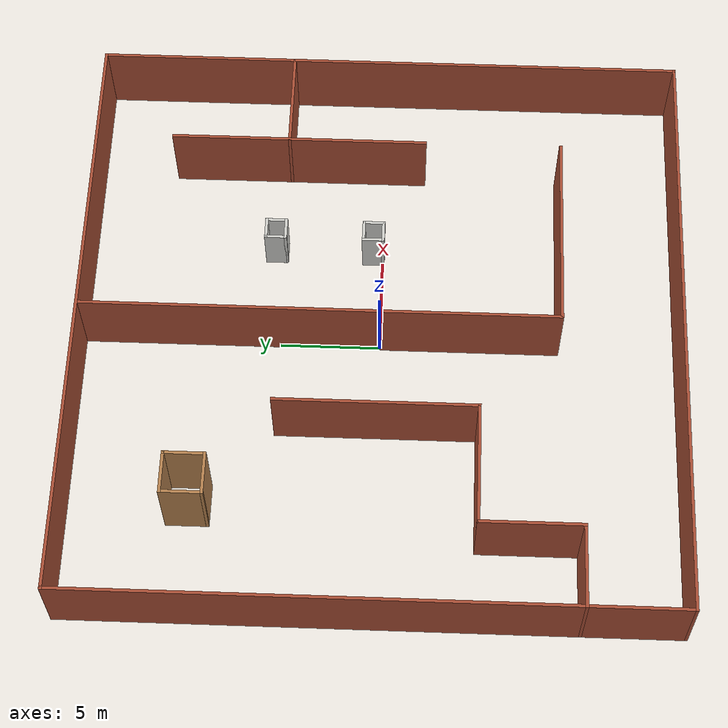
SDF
<?xml version='1.0'?>
<sdf version='1.7'>
  <model name='building'>
    <link name='Wall_23'>
      <pose>-15 0 0 0 -0 1.5708</pose>
      <self_collide>0</self_collide>
      <enable_wind>0</enable_wind>
      <kinematic>0</kinematic>
      <gravity>1</gravity>
      <inertial>
        <mass>1</mass>
        <pose>0 0 0 0 -0 0</pose>
        <inertia>
          <ixx>1</ixx>
          <ixy>0</ixy>
          <ixz>0</ixz>
          <iyy>1</iyy>
          <iyz>0</iyz>
          <izz>1</izz>
        </inertia>
      </inertial>
      <visual name='Wall_23_Visual'>
        <pose>0 0 2 0 -0 0</pose>
        <geometry>
          <box>
            <size>30.15 0.15 4</size>
          </box>
        </geometry>
        <material>
          <script>
            <uri>file://media/materials/scripts/gazebo.material</uri>
            <name>Gazebo/Bricks</name>
          </script>
          <ambient>1 1 1 1</ambient>
          <shader type='pixel'>
            <normal_map>__default__</normal_map>
          </shader>
          <diffuse>1 1 1 1</diffuse>
          <specular>0.2 0.2 0.2 1</specular>
          <emissive>0 0 0 1</emissive>
        </material>
        <meta>
          <layer>0</layer>
        </meta>
        <transparency>0</transparency>
        <cast_shadows>1</cast_shadows>
      </visual>
      <collision name='Wall_23_Collision'>
        <laser_retro>0</laser_retro>
        <max_contacts>10</max_contacts>
        <pose>0 0 2 0 -0 0</pose>
        <geometry>
          <box>
            <size>30.15 0.15 4</size>
          </box>
        </geometry>
        <surface>
          <friction>
            <ode>
              <mu>1</mu>
              <mu2>1</mu2>
              <fdir1>0 0 0</fdir1>
              <slip1>0</slip1>
              <slip2>0</slip2>
            </ode>
            <torsional>
              <coefficient>1</coefficient>
              <patch_radius>0</patch_radius>
              <surface_radius>0</surface_radius>
              <use_patch_radius>1</use_patch_radius>
              <ode>
                <slip>0</slip>
              </ode>
            </torsional>
          </friction>
          <bounce>
            <restitution_coefficient>0</restitution_coefficient>
            <threshold>1e+06</threshold>
          </bounce>
          <contact>
            <collide_without_contact>0</collide_without_contact>
            <collide_without_contact_bitmask>1</collide_without_contact_bitmask>
            <collide_bitmask>1</collide_bitmask>
            <ode>
              <soft_cfm>0</soft_cfm>
              <soft_erp>0.2</soft_erp>
              <kp>1e+13</kp>
              <kd>1</kd>
              <max_vel>0.01</max_vel>
              <min_depth>0</min_depth>
            </ode>
            <bullet>
              <split_impulse>1</split_impulse>
              <split_impulse_penetration_threshold>-0.01</split_impulse_penetration_threshold>
              <soft_cfm>0</soft_cfm>
              <soft_erp>0.2</soft_erp>
              <kp>1e+13</kp>
              <kd>1</kd>
            </bullet>
          </contact>
        </surface>
      </collision>
    </link>
    <link name='Wall_25'>
      <pose>0 -15 0 0 -0 0</pose>
      <self_collide>0</self_collide>
      <enable_wind>0</enable_wind>
      <kinematic>0</kinematic>
      <gravity>1</gravity>
      <inertial>
        <mass>1</mass>
        <pose>0 0 0 0 -0 0</pose>
        <inertia>
          <ixx>1</ixx>
          <ixy>0</ixy>
          <ixz>0</ixz>
          <iyy>1</iyy>
          <iyz>0</iyz>
          <izz>1</izz>
        </inertia>
      </inertial>
      <visual name='Wall_25_Visual'>
        <pose>0 0 2 0 -0 0</pose>
        <geometry>
          <box>
            <size>30.15 0.15 4</size>
          </box>
        </geometry>
        <material>
          <script>
            <uri>file://media/materials/scripts/gazebo.material</uri>
            <name>Gazebo/Bricks</name>
          </script>
          <ambient>1 1 1 1</ambient>
          <shader type='pixel'>
            <normal_map>__default__</normal_map>
          </shader>
          <diffuse>1 1 1 1</diffuse>
          <specular>0.2 0.2 0.2 1</specular>
          <emissive>0 0 0 1</emissive>
        </material>
        <meta>
          <layer>0</layer>
        </meta>
        <transparency>0</transparency>
        <cast_shadows>1</cast_shadows>
      </visual>
      <collision name='Wall_25_Collision'>
        <laser_retro>0</laser_retro>
        <max_contacts>10</max_contacts>
        <pose>0 0 1.25 0 -0 0</pose>
        <geometry>
          <box>
            <size>30.15 0.15 2.5</size>
          </box>
        </geometry>
        <surface>
          <friction>
            <ode>
              <mu>1</mu>
              <mu2>1</mu2>
              <fdir1>0 0 0</fdir1>
              <slip1>0</slip1>
              <slip2>0</slip2>
            </ode>
            <torsional>
              <coefficient>1</coefficient>
              <patch_radius>0</patch_radius>
              <surface_radius>0</surface_radius>
              <use_patch_radius>1</use_patch_radius>
              <ode>
                <slip>0</slip>
              </ode>
            </torsional>
          </friction>
          <bounce>
            <restitution_coefficient>0</restitution_coefficient>
            <threshold>1e+06</threshold>
          </bounce>
          <contact>
            <collide_without_contact>0</collide_without_contact>
            <collide_without_contact_bitmask>1</collide_without_contact_bitmask>
            <collide_bitmask>1</collide_bitmask>
            <ode>
              <soft_cfm>0</soft_cfm>
              <soft_erp>0.2</soft_erp>
              <kp>1e+13</kp>
              <kd>1</kd>
              <max_vel>0.01</max_vel>
              <min_depth>0</min_depth>
            </ode>
            <bullet>
              <split_impulse>1</split_impulse>
              <split_impulse_penetration_threshold>-0.01</split_impulse_penetration_threshold>
              <soft_cfm>0</soft_cfm>
              <soft_erp>0.2</soft_erp>
              <kp>1e+13</kp>
              <kd>1</kd>
            </bullet>
          </contact>
        </surface>
      </collision>
    </link>
    <link name='Wall_27'>
      <pose>0 15 0 0 -0 0</pose>
      <self_collide>0</self_collide>
      <enable_wind>0</enable_wind>
      <kinematic>0</kinematic>
      <gravity>1</gravity>
      <inertial>
        <mass>1</mass>
        <pose>0 0 0 0 -0 0</pose>
        <inertia>
          <ixx>1</ixx>
          <ixy>0</ixy>
          <ixz>0</ixz>
          <iyy>1</iyy>
          <iyz>0</iyz>
          <izz>1</izz>
        </inertia>
      </inertial>
      <visual name='Wall_27_Visual'>
        <pose>0 0 2 0 -0 0</pose>
        <geometry>
          <box>
            <size>30.15 0.15 4</size>
          </box>
        </geometry>
        <material>
          <script>
            <uri>file://media/materials/scripts/gazebo.material</uri>
            <name>Gazebo/Bricks</name>
          </script>
          <ambient>1 1 1 1</ambient>
          <shader type='pixel'>
            <normal_map>__default__</normal_map>
          </shader>
          <diffuse>1 1 1 1</diffuse>
          <specular>0.2 0.2 0.2 1</specular>
          <emissive>0 0 0 1</emissive>
        </material>
        <meta>
          <layer>0</layer>
        </meta>
        <transparency>0</transparency>
        <cast_shadows>1</cast_shadows>
      </visual>
      <collision name='Wall_27_Collision'>
        <laser_retro>0</laser_retro>
        <max_contacts>10</max_contacts>
        <pose>0 0 2 0 -0 0</pose>
        <geometry>
          <box>
            <size>30.15 0.15 4</size>
          </box>
        </geometry>
        <surface>
          <friction>
            <ode>
              <mu>1</mu>
              <mu2>1</mu2>
              <fdir1>0 0 0</fdir1>
              <slip1>0</slip1>
              <slip2>0</slip2>
            </ode>
            <torsional>
              <coefficient>1</coefficient>
              <patch_radius>0</patch_radius>
              <surface_radius>0</surface_radius>
              <use_patch_radius>1</use_patch_radius>
              <ode>
                <slip>0</slip>
              </ode>
            </torsional>
          </friction>
          <bounce>
            <restitution_coefficient>0</restitution_coefficient>
            <threshold>1e+06</threshold>
          </bounce>
          <contact>
            <collide_without_contact>0</collide_without_contact>
            <collide_without_contact_bitmask>1</collide_without_contact_bitmask>
            <collide_bitmask>1</collide_bitmask>
            <ode>
              <soft_cfm>0</soft_cfm>
              <soft_erp>0.2</soft_erp>
              <kp>1e+13</kp>
              <kd>1</kd>
              <max_vel>0.01</max_vel>
              <min_depth>0</min_depth>
            </ode>
            <bullet>
              <split_impulse>1</split_impulse>
              <split_impulse_penetration_threshold>-0.01</split_impulse_penetration_threshold>
              <soft_cfm>0</soft_cfm>
              <soft_erp>0.2</soft_erp>
              <kp>1e+13</kp>
              <kd>1</kd>
            </bullet>
          </contact>
        </surface>
      </collision>
    </link>
    <link name='Wall_28'>
      <pose>15 0 0 0 0 -1.5708</pose>
      <self_collide>0</self_collide>
      <enable_wind>0</enable_wind>
      <kinematic>0</kinematic>
      <gravity>1</gravity>
      <inertial>
        <mass>1</mass>
        <pose>0 0 0 0 -0 0</pose>
        <inertia>
          <ixx>1</ixx>
          <ixy>0</ixy>
          <ixz>0</ixz>
          <iyy>1</iyy>
          <iyz>0</iyz>
          <izz>1</izz>
        </inertia>
      </inertial>
      <visual name='Wall_28_Visual'>
        <pose>0 0 2 0 -0 0</pose>
        <geometry>
          <box>
            <size>30.15 0.15 4</size>
          </box>
        </geometry>
        <material>
          <script>
            <uri>file://media/materials/scripts/gazebo.material</uri>
            <name>Gazebo/Bricks</name>
          </script>
          <ambient>1 1 1 1</ambient>
          <shader type='pixel'>
            <normal_map>__default__</normal_map>
          </shader>
          <diffuse>1 1 1 1</diffuse>
          <specular>0.2 0.2 0.2 1</specular>
          <emissive>0 0 0 1</emissive>
        </material>
        <meta>
          <layer>0</layer>
        </meta>
        <transparency>0</transparency>
        <cast_shadows>1</cast_shadows>
      </visual>
      <collision name='Wall_28_Collision'>
        <laser_retro>0</laser_retro>
        <max_contacts>10</max_contacts>
        <pose>0 0 2 0 -0 0</pose>
        <geometry>
          <box>
            <size>30.15 0.15 4</size>
          </box>
        </geometry>
        <surface>
          <friction>
            <ode>
              <mu>1</mu>
              <mu2>1</mu2>
              <fdir1>0 0 0</fdir1>
              <slip1>0</slip1>
              <slip2>0</slip2>
            </ode>
            <torsional>
              <coefficient>1</coefficient>
              <patch_radius>0</patch_radius>
              <surface_radius>0</surface_radius>
              <use_patch_radius>1</use_patch_radius>
              <ode>
                <slip>0</slip>
              </ode>
            </torsional>
          </friction>
          <bounce>
            <restitution_coefficient>0</restitution_coefficient>
            <threshold>1e+06</threshold>
          </bounce>
          <contact>
            <collide_without_contact>0</collide_without_contact>
            <collide_without_contact_bitmask>1</collide_without_contact_bitmask>
            <collide_bitmask>1</collide_bitmask>
            <ode>
              <soft_cfm>0</soft_cfm>
              <soft_erp>0.2</soft_erp>
              <kp>1e+13</kp>
              <kd>1</kd>
              <max_vel>0.01</max_vel>
              <min_depth>0</min_depth>
            </ode>
            <bullet>
              <split_impulse>1</split_impulse>
              <split_impulse_penetration_threshold>-0.01</split_impulse_penetration_threshold>
              <soft_cfm>0</soft_cfm>
              <soft_erp>0.2</soft_erp>
              <kp>1e+13</kp>
              <kd>1</kd>
            </bullet>
          </contact>
        </surface>
      </collision>
    </link>
    <link name='Wall_30'>
      <pose>-8 -5 0 0 -0 0</pose>
      <self_collide>0</self_collide>
      <enable_wind>0</enable_wind>
      <kinematic>0</kinematic>
      <gravity>1</gravity>
      <inertial>
        <mass>1</mass>
        <pose>0 0 0 0 -0 0</pose>
        <inertia>
          <ixx>1</ixx>
          <ixy>0</ixy>
          <ixz>0</ixz>
          <iyy>1</iyy>
          <iyz>0</iyz>
          <izz>1</izz>
        </inertia>
      </inertial>
      <visual name='Wall_30_Visual'>
        <pose>0 0 2 0 -0 0</pose>
        <geometry>
          <box>
            <size>6.15 0.15 4</size>
          </box>
        </geometry>
        <material>
          <script>
            <uri>file://media/materials/scripts/gazebo.material</uri>
            <name>Gazebo/Bricks</name>
          </script>
          <ambient>1 1 1 1</ambient>
          <shader type='pixel'>
            <normal_map>__default__</normal_map>
          </shader>
          <diffuse>1 1 1 1</diffuse>
          <specular>0.2 0.2 0.2 1</specular>
          <emissive>0 0 0 1</emissive>
        </material>
        <meta>
          <layer>0</layer>
        </meta>
        <transparency>0</transparency>
        <cast_shadows>1</cast_shadows>
      </visual>
      <collision name='Wall_30_Collision'>
        <laser_retro>0</laser_retro>
        <max_contacts>10</max_contacts>
        <pose>0 0 2 0 -0 0</pose>
        <geometry>
          <box>
            <size>6.15 0.15 4</size>
          </box>
        </geometry>
        <surface>
          <friction>
            <ode>
              <mu>1</mu>
              <mu2>1</mu2>
              <fdir1>0 0 0</fdir1>
              <slip1>0</slip1>
              <slip2>0</slip2>
            </ode>
            <torsional>
              <coefficient>1</coefficient>
              <patch_radius>0</patch_radius>
              <surface_radius>0</surface_radius>
              <use_patch_radius>1</use_patch_radius>
              <ode>
                <slip>0</slip>
              </ode>
            </torsional>
          </friction>
          <bounce>
            <restitution_coefficient>0</restitution_coefficient>
            <threshold>1e+06</threshold>
          </bounce>
          <contact>
            <collide_without_contact>0</collide_without_contact>
            <collide_without_contact_bitmask>1</collide_without_contact_bitmask>
            <collide_bitmask>1</collide_bitmask>
            <ode>
              <soft_cfm>0</soft_cfm>
              <soft_erp>0.2</soft_erp>
              <kp>1e+13</kp>
              <kd>1</kd>
              <max_vel>0.01</max_vel>
              <min_depth>0</min_depth>
            </ode>
            <bullet>
              <split_impulse>1</split_impulse>
              <split_impulse_penetration_threshold>-0.01</split_impulse_penetration_threshold>
              <soft_cfm>0</soft_cfm>
              <soft_erp>0.2</soft_erp>
              <kp>1e+13</kp>
              <kd>1</kd>
            </bullet>
          </contact>
        </surface>
      </collision>
    </link>
    <link name='Wall_31'>
      <pose>-5 0 0 0 -0 1.5708</pose>
      <self_collide>0</self_collide>
      <enable_wind>0</enable_wind>
      <kinematic>0</kinematic>
      <gravity>1</gravity>
      <inertial>
        <mass>1</mass>
        <pose>0 0 0 0 -0 0</pose>
        <inertia>
          <ixx>1</ixx>
          <ixy>0</ixy>
          <ixz>0</ixz>
          <iyy>1</iyy>
          <iyz>0</iyz>
          <izz>1</izz>
        </inertia>
      </inertial>
      <visual name='Wall_31_Visual'>
        <pose>0 0 2 0 -0 0</pose>
        <geometry>
          <box>
            <size>10.15 0.15 4</size>
          </box>
        </geometry>
        <material>
          <script>
            <uri>file://media/materials/scripts/gazebo.material</uri>
            <name>Gazebo/Bricks</name>
          </script>
          <ambient>1 1 1 1</ambient>
          <shader type='pixel'>
            <normal_map>__default__</normal_map>
          </shader>
          <diffuse>1 1 1 1</diffuse>
          <specular>0.2 0.2 0.2 1</specular>
          <emissive>0 0 0 1</emissive>
        </material>
        <meta>
          <layer>0</layer>
        </meta>
        <transparency>0</transparency>
        <cast_shadows>1</cast_shadows>
      </visual>
      <collision name='Wall_31_Collision'>
        <laser_retro>0</laser_retro>
        <max_contacts>10</max_contacts>
        <pose>0 0 2 0 -0 0</pose>
        <geometry>
          <box>
            <size>10.15 0.15 4</size>
          </box>
        </geometry>
        <surface>
          <friction>
            <ode>
              <mu>1</mu>
              <mu2>1</mu2>
              <fdir1>0 0 0</fdir1>
              <slip1>0</slip1>
              <slip2>0</slip2>
            </ode>
            <torsional>
              <coefficient>1</coefficient>
              <patch_radius>0</patch_radius>
              <surface_radius>0</surface_radius>
              <use_patch_radius>1</use_patch_radius>
              <ode>
                <slip>0</slip>
              </ode>
            </torsional>
          </friction>
          <bounce>
            <restitution_coefficient>0</restitution_coefficient>
            <threshold>1e+06</threshold>
          </bounce>
          <contact>
            <collide_without_contact>0</collide_without_contact>
            <collide_without_contact_bitmask>1</collide_without_contact_bitmask>
            <collide_bitmask>1</collide_bitmask>
            <ode>
              <soft_cfm>0</soft_cfm>
              <soft_erp>0.2</soft_erp>
              <kp>1e+13</kp>
              <kd>1</kd>
              <max_vel>0.01</max_vel>
              <min_depth>0</min_depth>
            </ode>
            <bullet>
              <split_impulse>1</split_impulse>
              <split_impulse_penetration_threshold>-0.01</split_impulse_penetration_threshold>
              <soft_cfm>0</soft_cfm>
              <soft_erp>0.2</soft_erp>
              <kp>1e+13</kp>
              <kd>1</kd>
            </bullet>
          </contact>
        </surface>
      </collision>
    </link>
    <link name='Wall_33'>
      <pose>5 -9 0 0 -0 0</pose>
      <self_collide>0</self_collide>
      <enable_wind>0</enable_wind>
      <kinematic>0</kinematic>
      <gravity>1</gravity>
      <inertial>
        <mass>1</mass>
        <pose>0 0 0 0 -0 0</pose>
        <inertia>
          <ixx>1</ixx>
          <ixy>0</ixy>
          <ixz>0</ixz>
          <iyy>1</iyy>
          <iyz>0</iyz>
          <izz>1</izz>
        </inertia>
      </inertial>
      <visual name='Wall_33_Visual'>
        <pose>0 0 2 0 -0 0</pose>
        <geometry>
          <box>
            <size>10.15 0.15 4</size>
          </box>
        </geometry>
        <material>
          <script>
            <uri>file://media/materials/scripts/gazebo.material</uri>
            <name>Gazebo/Bricks</name>
          </script>
          <ambient>1 1 1 1</ambient>
          <shader type='pixel'>
            <normal_map>__default__</normal_map>
          </shader>
          <diffuse>1 1 1 1</diffuse>
          <specular>0.2 0.2 0.2 1</specular>
          <emissive>0 0 0 1</emissive>
        </material>
        <meta>
          <layer>0</layer>
        </meta>
        <transparency>0</transparency>
        <cast_shadows>1</cast_shadows>
      </visual>
      <collision name='Wall_33_Collision'>
        <laser_retro>0</laser_retro>
        <max_contacts>10</max_contacts>
        <pose>0 0 2 0 -0 0</pose>
        <geometry>
          <box>
            <size>10.15 0.15 4</size>
          </box>
        </geometry>
        <surface>
          <friction>
            <ode>
              <mu>1</mu>
              <mu2>1</mu2>
              <fdir1>0 0 0</fdir1>
              <slip1>0</slip1>
              <slip2>0</slip2>
            </ode>
            <torsional>
              <coefficient>1</coefficient>
              <patch_radius>0</patch_radius>
              <surface_radius>0</surface_radius>
              <use_patch_radius>1</use_patch_radius>
              <ode>
                <slip>0</slip>
              </ode>
            </torsional>
          </friction>
          <bounce>
            <restitution_coefficient>0</restitution_coefficient>
            <threshold>1e+06</threshold>
          </bounce>
          <contact>
            <collide_without_contact>0</collide_without_contact>
            <collide_without_contact_bitmask>1</collide_without_contact_bitmask>
            <collide_bitmask>1</collide_bitmask>
            <ode>
              <soft_cfm>0</soft_cfm>
              <soft_erp>0.2</soft_erp>
              <kp>1e+13</kp>
              <kd>1</kd>
              <max_vel>0.01</max_vel>
              <min_depth>0</min_depth>
            </ode>
            <bullet>
              <split_impulse>1</split_impulse>
              <split_impulse_penetration_threshold>-0.01</split_impulse_penetration_threshold>
              <soft_cfm>0</soft_cfm>
              <soft_erp>0.2</soft_erp>
              <kp>1e+13</kp>
              <kd>1</kd>
            </bullet>
          </contact>
        </surface>
      </collision>
    </link>
    <link name='Wall_35'>
      <pose>10 4.5 0 0 0 -1.5708</pose>
      <self_collide>0</self_collide>
      <enable_wind>0</enable_wind>
      <kinematic>0</kinematic>
      <gravity>1</gravity>
      <inertial>
        <mass>1</mass>
        <pose>0 0 0 0 -0 0</pose>
        <inertia>
          <ixx>1</ixx>
          <ixy>0</ixy>
          <ixz>0</ixz>
          <iyy>1</iyy>
          <iyz>0</iyz>
          <izz>1</izz>
        </inertia>
      </inertial>
      <visual name='Wall_35_Visual'>
        <pose>0 0 2 0 -0 0</pose>
        <geometry>
          <box>
            <size>13.15 0.15 4</size>
          </box>
        </geometry>
        <material>
          <script>
            <uri>file://media/materials/scripts/gazebo.material</uri>
            <name>Gazebo/Bricks</name>
          </script>
          <ambient>1 1 1 1</ambient>
          <shader type='pixel'>
            <normal_map>__default__</normal_map>
          </shader>
          <diffuse>1 1 1 1</diffuse>
          <specular>0.2 0.2 0.2 1</specular>
          <emissive>0 0 0 1</emissive>
        </material>
        <meta>
          <layer>0</layer>
        </meta>
        <transparency>0</transparency>
        <cast_shadows>1</cast_shadows>
      </visual>
      <collision name='Wall_35_Collision'>
        <laser_retro>0</laser_retro>
        <max_contacts>10</max_contacts>
        <pose>0 0 2 0 -0 0</pose>
        <geometry>
          <box>
            <size>13.15 0.15 4</size>
          </box>
        </geometry>
        <surface>
          <friction>
            <ode>
              <mu>1</mu>
              <mu2>1</mu2>
              <fdir1>0 0 0</fdir1>
              <slip1>0</slip1>
              <slip2>0</slip2>
            </ode>
            <torsional>
              <coefficient>1</coefficient>
              <patch_radius>0</patch_radius>
              <surface_radius>0</surface_radius>
              <use_patch_radius>1</use_patch_radius>
              <ode>
                <slip>0</slip>
              </ode>
            </torsional>
          </friction>
          <bounce>
            <restitution_coefficient>0</restitution_coefficient>
            <threshold>1e+06</threshold>
          </bounce>
          <contact>
            <collide_without_contact>0</collide_without_contact>
            <collide_without_contact_bitmask>1</collide_without_contact_bitmask>
            <collide_bitmask>1</collide_bitmask>
            <ode>
              <soft_cfm>0</soft_cfm>
              <soft_erp>0.2</soft_erp>
              <kp>1e+13</kp>
              <kd>1</kd>
              <max_vel>0.01</max_vel>
              <min_depth>0</min_depth>
            </ode>
            <bullet>
              <split_impulse>1</split_impulse>
              <split_impulse_penetration_threshold>-0.01</split_impulse_penetration_threshold>
              <soft_cfm>0</soft_cfm>
              <soft_erp>0.2</soft_erp>
              <kp>1e+13</kp>
              <kd>1</kd>
            </bullet>
          </contact>
        </surface>
      </collision>
    </link>
    <link name='Wall_37'>
      <pose>5.5 6 0 0 -0 0</pose>
      <self_collide>0</self_collide>
      <enable_wind>0</enable_wind>
      <kinematic>0</kinematic>
      <visual name='Wall_37_Visual'>
        <pose>0 0 1.25 0 -0 0</pose>
        <geometry>
          <box>
            <size>1.15 0.15 2.5</size>
          </box>
        </geometry>
        <material>
          <script>
            <uri>file://media/materials/scripts/gazebo.material</uri>
            <name>Gazebo/CeilingTiled</name>
          </script>
          <ambient>1 1 1 1</ambient>
          <shader type='pixel'/>
        </material>
        <meta>
          <layer>0</layer>
        </meta>
        <transparency>0</transparency>
        <cast_shadows>1</cast_shadows>
      </visual>
      <collision name='Wall_37_Collision'>
        <laser_retro>0</laser_retro>
        <max_contacts>10</max_contacts>
        <pose>0 0 1.25 0 -0 0</pose>
        <geometry>
          <box>
            <size>1.15 0.15 2.5</size>
          </box>
        </geometry>
        <surface>
          <friction>
            <ode>
              <mu>1</mu>
              <mu2>1</mu2>
              <fdir1>0 0 0</fdir1>
              <slip1>0</slip1>
              <slip2>0</slip2>
            </ode>
            <torsional>
              <coefficient>1</coefficient>
              <patch_radius>0</patch_radius>
              <surface_radius>0</surface_radius>
              <use_patch_radius>1</use_patch_radius>
              <ode>
                <slip>0</slip>
              </ode>
            </torsional>
          </friction>
          <bounce>
            <restitution_coefficient>0</restitution_coefficient>
            <threshold>1e+06</threshold>
          </bounce>
          <contact>
            <collide_without_contact>0</collide_without_contact>
            <collide_without_contact_bitmask>1</collide_without_contact_bitmask>
            <collide_bitmask>1</collide_bitmask>
            <ode>
              <soft_cfm>0</soft_cfm>
              <soft_erp>0.2</soft_erp>
              <kp>1e+13</kp>
              <kd>1</kd>
              <max_vel>0.01</max_vel>
              <min_depth>0</min_depth>
            </ode>
            <bullet>
              <split_impulse>1</split_impulse>
              <split_impulse_penetration_threshold>-0.01</split_impulse_penetration_threshold>
              <soft_cfm>0</soft_cfm>
              <soft_erp>0.2</soft_erp>
              <kp>1e+13</kp>
              <kd>1</kd>
            </bullet>
          </contact>
        </surface>
      </collision>
    </link>
    <link name='Wall_38'>
      <pose>6 5.5 0 0 0 -1.5708</pose>
      <self_collide>0</self_collide>
      <enable_wind>0</enable_wind>
      <kinematic>0</kinematic>
      <visual name='Wall_38_Visual'>
        <pose>0 0 1.25 0 -0 0</pose>
        <geometry>
          <box>
            <size>1.15 0.15 2.5</size>
          </box>
        </geometry>
        <material>
          <script>
            <uri>file://media/materials/scripts/gazebo.material</uri>
            <name>Gazebo/CeilingTiled</name>
          </script>
          <ambient>1 1 1 1</ambient>
          <shader type='pixel'/>
        </material>
        <meta>
          <layer>0</layer>
        </meta>
        <transparency>0</transparency>
        <cast_shadows>1</cast_shadows>
      </visual>
      <collision name='Wall_38_Collision'>
        <laser_retro>0</laser_retro>
        <max_contacts>10</max_contacts>
        <pose>0 0 1.25 0 -0 0</pose>
        <geometry>
          <box>
            <size>1.15 0.15 2.5</size>
          </box>
        </geometry>
        <surface>
          <friction>
            <ode>
              <mu>1</mu>
              <mu2>1</mu2>
              <fdir1>0 0 0</fdir1>
              <slip1>0</slip1>
              <slip2>0</slip2>
            </ode>
            <torsional>
              <coefficient>1</coefficient>
              <patch_radius>0</patch_radius>
              <surface_radius>0</surface_radius>
              <use_patch_radius>1</use_patch_radius>
              <ode>
                <slip>0</slip>
              </ode>
            </torsional>
          </friction>
          <bounce>
            <restitution_coefficient>0</restitution_coefficient>
            <threshold>1e+06</threshold>
          </bounce>
          <contact>
            <collide_without_contact>0</collide_without_contact>
            <collide_without_contact_bitmask>1</collide_without_contact_bitmask>
            <collide_bitmask>1</collide_bitmask>
            <ode>
              <soft_cfm>0</soft_cfm>
              <soft_erp>0.2</soft_erp>
              <kp>1e+13</kp>
              <kd>1</kd>
              <max_vel>0.01</max_vel>
              <min_depth>0</min_depth>
            </ode>
            <bullet>
              <split_impulse>1</split_impulse>
              <split_impulse_penetration_threshold>-0.01</split_impulse_penetration_threshold>
              <soft_cfm>0</soft_cfm>
              <soft_erp>0.2</soft_erp>
              <kp>1e+13</kp>
              <kd>1</kd>
            </bullet>
          </contact>
        </surface>
      </collision>
    </link>
    <link name='Wall_39'>
      <pose>5.5 5 0 0 -0 3.14159</pose>
      <self_collide>0</self_collide>
      <enable_wind>0</enable_wind>
      <kinematic>0</kinematic>
      <visual name='Wall_39_Visual'>
        <pose>0 0 1.25 0 -0 0</pose>
        <geometry>
          <box>
            <size>1.15 0.15 2.5</size>
          </box>
        </geometry>
        <material>
          <script>
            <uri>file://media/materials/scripts/gazebo.material</uri>
            <name>Gazebo/CeilingTiled</name>
          </script>
          <ambient>1 1 1 1</ambient>
          <shader type='pixel'/>
        </material>
        <meta>
          <layer>0</layer>
        </meta>
        <transparency>0</transparency>
        <cast_shadows>1</cast_shadows>
      </visual>
      <collision name='Wall_39_Collision'>
        <laser_retro>0</laser_retro>
        <max_contacts>10</max_contacts>
        <pose>0 0 1.25 0 -0 0</pose>
        <geometry>
          <box>
            <size>1.15 0.15 2.5</size>
          </box>
        </geometry>
        <surface>
          <friction>
            <ode>
              <mu>1</mu>
              <mu2>1</mu2>
              <fdir1>0 0 0</fdir1>
              <slip1>0</slip1>
              <slip2>0</slip2>
            </ode>
            <torsional>
              <coefficient>1</coefficient>
              <patch_radius>0</patch_radius>
              <surface_radius>0</surface_radius>
              <use_patch_radius>1</use_patch_radius>
              <ode>
                <slip>0</slip>
              </ode>
            </torsional>
          </friction>
          <bounce>
            <restitution_coefficient>0</restitution_coefficient>
            <threshold>1e+06</threshold>
          </bounce>
          <contact>
            <collide_without_contact>0</collide_without_contact>
            <collide_without_contact_bitmask>1</collide_without_contact_bitmask>
            <collide_bitmask>1</collide_bitmask>
            <ode>
              <soft_cfm>0</soft_cfm>
              <soft_erp>0.2</soft_erp>
              <kp>1e+13</kp>
              <kd>1</kd>
              <max_vel>0.01</max_vel>
              <min_depth>0</min_depth>
            </ode>
            <bullet>
              <split_impulse>1</split_impulse>
              <split_impulse_penetration_threshold>-0.01</split_impulse_penetration_threshold>
              <soft_cfm>0</soft_cfm>
              <soft_erp>0.2</soft_erp>
              <kp>1e+13</kp>
              <kd>1</kd>
            </bullet>
          </contact>
        </surface>
      </collision>
    </link>
    <link name='Wall_40'>
      <pose>5 5.5 0 0 -0 1.5708</pose>
      <self_collide>0</self_collide>
      <enable_wind>0</enable_wind>
      <kinematic>0</kinematic>
      <visual name='Wall_40_Visual'>
        <pose>0 0 1.25 0 -0 0</pose>
        <geometry>
          <box>
            <size>1.15 0.15 2.5</size>
          </box>
        </geometry>
        <material>
          <script>
            <uri>file://media/materials/scripts/gazebo.material</uri>
            <name>Gazebo/CeilingTiled</name>
          </script>
          <ambient>1 1 1 1</ambient>
          <shader type='pixel'/>
        </material>
        <meta>
          <layer>0</layer>
        </meta>
        <transparency>0</transparency>
        <cast_shadows>1</cast_shadows>
      </visual>
      <collision name='Wall_40_Collision'>
        <laser_retro>0</laser_retro>
        <max_contacts>10</max_contacts>
        <pose>0 0 1.25 0 -0 0</pose>
        <geometry>
          <box>
            <size>1.15 0.15 2.5</size>
          </box>
        </geometry>
        <surface>
          <friction>
            <ode>
              <mu>1</mu>
              <mu2>1</mu2>
              <fdir1>0 0 0</fdir1>
              <slip1>0</slip1>
              <slip2>0</slip2>
            </ode>
            <torsional>
              <coefficient>1</coefficient>
              <patch_radius>0</patch_radius>
              <surface_radius>0</surface_radius>
              <use_patch_radius>1</use_patch_radius>
              <ode>
                <slip>0</slip>
              </ode>
            </torsional>
          </friction>
          <bounce>
            <restitution_coefficient>0</restitution_coefficient>
            <threshold>1e+06</threshold>
          </bounce>
          <contact>
            <collide_without_contact>0</collide_without_contact>
            <collide_without_contact_bitmask>1</collide_without_contact_bitmask>
            <collide_bitmask>1</collide_bitmask>
            <ode>
              <soft_cfm>0</soft_cfm>
              <soft_erp>0.2</soft_erp>
              <kp>1e+13</kp>
              <kd>1</kd>
              <max_vel>0.01</max_vel>
              <min_depth>0</min_depth>
            </ode>
            <bullet>
              <split_impulse>1</split_impulse>
              <split_impulse_penetration_threshold>-0.01</split_impulse_penetration_threshold>
              <soft_cfm>0</soft_cfm>
              <soft_erp>0.2</soft_erp>
              <kp>1e+13</kp>
              <kd>1</kd>
            </bullet>
          </contact>
        </surface>
      </collision>
    </link>
    <link name='Wall_43'>
      <pose>-13 -10 0 0 -0 0</pose>
      <self_collide>0</self_collide>
      <enable_wind>0</enable_wind>
      <kinematic>0</kinematic>
      <gravity>1</gravity>
      <inertial>
        <mass>1</mass>
        <pose>0 0 0 0 -0 0</pose>
        <inertia>
          <ixx>1</ixx>
          <ixy>0</ixy>
          <ixz>0</ixz>
          <iyy>1</iyy>
          <iyz>0</iyz>
          <izz>1</izz>
        </inertia>
      </inertial>
      <visual name='Wall_43_Visual'>
        <pose>0 0 2 0 -0 0</pose>
        <geometry>
          <box>
            <size>4.15 0.15 4</size>
          </box>
        </geometry>
        <material>
          <script>
            <uri>file://media/materials/scripts/gazebo.material</uri>
            <name>Gazebo/Bricks</name>
          </script>
          <ambient>1 1 1 1</ambient>
          <shader type='pixel'>
            <normal_map>__default__</normal_map>
          </shader>
          <diffuse>1 1 1 1</diffuse>
          <specular>0.2 0.2 0.2 1</specular>
          <emissive>0 0 0 1</emissive>
        </material>
        <meta>
          <layer>0</layer>
        </meta>
        <transparency>0</transparency>
        <cast_shadows>1</cast_shadows>
      </visual>
      <collision name='Wall_43_Collision'>
        <laser_retro>0</laser_retro>
        <max_contacts>10</max_contacts>
        <pose>0 0 2 0 -0 0</pose>
        <geometry>
          <box>
            <size>4.15 0.15 4</size>
          </box>
        </geometry>
        <surface>
          <friction>
            <ode>
              <mu>1</mu>
              <mu2>1</mu2>
              <fdir1>0 0 0</fdir1>
              <slip1>0</slip1>
              <slip2>0</slip2>
            </ode>
            <torsional>
              <coefficient>1</coefficient>
              <patch_radius>0</patch_radius>
              <surface_radius>0</surface_radius>
              <use_patch_radius>1</use_patch_radius>
              <ode>
                <slip>0</slip>
              </ode>
            </torsional>
          </friction>
          <bounce>
            <restitution_coefficient>0</restitution_coefficient>
            <threshold>1e+06</threshold>
          </bounce>
          <contact>
            <collide_without_contact>0</collide_without_contact>
            <collide_without_contact_bitmask>1</collide_without_contact_bitmask>
            <collide_bitmask>1</collide_bitmask>
            <ode>
              <soft_cfm>0</soft_cfm>
              <soft_erp>0.2</soft_erp>
              <kp>1e+13</kp>
              <kd>1</kd>
              <max_vel>0.01</max_vel>
              <min_depth>0</min_depth>
            </ode>
            <bullet>
              <split_impulse>1</split_impulse>
              <split_impulse_penetration_threshold>-0.01</split_impulse_penetration_threshold>
              <soft_cfm>0</soft_cfm>
              <soft_erp>0.2</soft_erp>
              <kp>1e+13</kp>
              <kd>1</kd>
            </bullet>
          </contact>
        </surface>
      </collision>
    </link>
    <link name='Wall_44'>
      <pose>-11 -7.5 0 0 -0 1.5708</pose>
      <self_collide>0</self_collide>
      <enable_wind>0</enable_wind>
      <kinematic>0</kinematic>
      <gravity>1</gravity>
      <inertial>
        <mass>1</mass>
        <pose>0 0 0 0 -0 0</pose>
        <inertia>
          <ixx>1</ixx>
          <ixy>0</ixy>
          <ixz>0</ixz>
          <iyy>1</iyy>
          <iyz>0</iyz>
          <izz>1</izz>
        </inertia>
      </inertial>
      <visual name='Wall_44_Visual'>
        <pose>0 0 2 0 -0 0</pose>
        <geometry>
          <box>
            <size>5.15 0.15 4</size>
          </box>
        </geometry>
        <material>
          <script>
            <uri>file://media/materials/scripts/gazebo.material</uri>
            <name>Gazebo/Bricks</name>
          </script>
          <ambient>1 1 1 1</ambient>
          <shader type='pixel'>
            <normal_map>__default__</normal_map>
          </shader>
          <diffuse>1 1 1 1</diffuse>
          <specular>0.2 0.2 0.2 1</specular>
          <emissive>0 0 0 1</emissive>
        </material>
        <meta>
          <layer>0</layer>
        </meta>
        <transparency>0</transparency>
        <cast_shadows>1</cast_shadows>
      </visual>
      <collision name='Wall_44_Collision'>
        <laser_retro>0</laser_retro>
        <max_contacts>10</max_contacts>
        <pose>0 0 2 0 -0 0</pose>
        <geometry>
          <box>
            <size>5.15 0.15 4</size>
          </box>
        </geometry>
        <surface>
          <friction>
            <ode>
              <mu>1</mu>
              <mu2>1</mu2>
              <fdir1>0 0 0</fdir1>
              <slip1>0</slip1>
              <slip2>0</slip2>
            </ode>
            <torsional>
              <coefficient>1</coefficient>
              <patch_radius>0</patch_radius>
              <surface_radius>0</surface_radius>
              <use_patch_radius>1</use_patch_radius>
              <ode>
                <slip>0</slip>
              </ode>
            </torsional>
          </friction>
          <bounce>
            <restitution_coefficient>0</restitution_coefficient>
            <threshold>1e+06</threshold>
          </bounce>
          <contact>
            <collide_without_contact>0</collide_without_contact>
            <collide_without_contact_bitmask>1</collide_without_contact_bitmask>
            <collide_bitmask>1</collide_bitmask>
            <ode>
              <soft_cfm>0</soft_cfm>
              <soft_erp>0.2</soft_erp>
              <kp>1e+13</kp>
              <kd>1</kd>
              <max_vel>0.01</max_vel>
              <min_depth>0</min_depth>
            </ode>
            <bullet>
              <split_impulse>1</split_impulse>
              <split_impulse_penetration_threshold>-0.01</split_impulse_penetration_threshold>
              <soft_cfm>0</soft_cfm>
              <soft_erp>0.2</soft_erp>
              <kp>1e+13</kp>
              <kd>1</kd>
            </bullet>
          </contact>
        </surface>
      </collision>
    </link>
    <link name='Wall_46'>
      <pose>5.5 1 0 0 -0 0</pose>
      <self_collide>0</self_collide>
      <enable_wind>0</enable_wind>
      <kinematic>0</kinematic>
      <visual name='Wall_46_Visual'>
        <pose>0 0 1.25 0 -0 0</pose>
        <geometry>
          <box>
            <size>1.15 0.15 2.5</size>
          </box>
        </geometry>
        <material>
          <script>
            <uri>file://media/materials/scripts/gazebo.material</uri>
            <name>Gazebo/CeilingTiled</name>
          </script>
          <ambient>1 1 1 1</ambient>
          <shader type='pixel'/>
        </material>
        <meta>
          <layer>0</layer>
        </meta>
        <transparency>0</transparency>
        <cast_shadows>1</cast_shadows>
      </visual>
      <collision name='Wall_46_Collision'>
        <laser_retro>0</laser_retro>
        <max_contacts>10</max_contacts>
        <pose>0 0 1.25 0 -0 0</pose>
        <geometry>
          <box>
            <size>1.15 0.15 2.5</size>
          </box>
        </geometry>
        <surface>
          <friction>
            <ode>
              <mu>1</mu>
              <mu2>1</mu2>
              <fdir1>0 0 0</fdir1>
              <slip1>0</slip1>
              <slip2>0</slip2>
            </ode>
            <torsional>
              <coefficient>1</coefficient>
              <patch_radius>0</patch_radius>
              <surface_radius>0</surface_radius>
              <use_patch_radius>1</use_patch_radius>
              <ode>
                <slip>0</slip>
              </ode>
            </torsional>
          </friction>
          <bounce>
            <restitution_coefficient>0</restitution_coefficient>
            <threshold>1e+06</threshold>
          </bounce>
          <contact>
            <collide_without_contact>0</collide_without_contact>
            <collide_without_contact_bitmask>1</collide_without_contact_bitmask>
            <collide_bitmask>1</collide_bitmask>
            <ode>
              <soft_cfm>0</soft_cfm>
              <soft_erp>0.2</soft_erp>
              <kp>1e+13</kp>
              <kd>1</kd>
              <max_vel>0.01</max_vel>
              <min_depth>0</min_depth>
            </ode>
            <bullet>
              <split_impulse>1</split_impulse>
              <split_impulse_penetration_threshold>-0.01</split_impulse_penetration_threshold>
              <soft_cfm>0</soft_cfm>
              <soft_erp>0.2</soft_erp>
              <kp>1e+13</kp>
              <kd>1</kd>
            </bullet>
          </contact>
        </surface>
      </collision>
    </link>
    <link name='Wall_47'>
      <pose>6 0.5 0 0 0 -1.5708</pose>
      <self_collide>0</self_collide>
      <enable_wind>0</enable_wind>
      <kinematic>0</kinematic>
      <visual name='Wall_47_Visual'>
        <pose>0 0 1.25 0 -0 0</pose>
        <geometry>
          <box>
            <size>1.15 0.15 2.5</size>
          </box>
        </geometry>
        <material>
          <script>
            <uri>file://media/materials/scripts/gazebo.material</uri>
            <name>Gazebo/CeilingTiled</name>
          </script>
          <ambient>1 1 1 1</ambient>
          <shader type='pixel'/>
        </material>
        <meta>
          <layer>0</layer>
        </meta>
        <transparency>0</transparency>
        <cast_shadows>1</cast_shadows>
      </visual>
      <collision name='Wall_47_Collision'>
        <laser_retro>0</laser_retro>
        <max_contacts>10</max_contacts>
        <pose>0 0 1.25 0 -0 0</pose>
        <geometry>
          <box>
            <size>1.15 0.15 2.5</size>
          </box>
        </geometry>
        <surface>
          <friction>
            <ode>
              <mu>1</mu>
              <mu2>1</mu2>
              <fdir1>0 0 0</fdir1>
              <slip1>0</slip1>
              <slip2>0</slip2>
            </ode>
            <torsional>
              <coefficient>1</coefficient>
              <patch_radius>0</patch_radius>
              <surface_radius>0</surface_radius>
              <use_patch_radius>1</use_patch_radius>
              <ode>
                <slip>0</slip>
              </ode>
            </torsional>
          </friction>
          <bounce>
            <restitution_coefficient>0</restitution_coefficient>
            <threshold>1e+06</threshold>
          </bounce>
          <contact>
            <collide_without_contact>0</collide_without_contact>
            <collide_without_contact_bitmask>1</collide_without_contact_bitmask>
            <collide_bitmask>1</collide_bitmask>
            <ode>
              <soft_cfm>0</soft_cfm>
              <soft_erp>0.2</soft_erp>
              <kp>1e+13</kp>
              <kd>1</kd>
              <max_vel>0.01</max_vel>
              <min_depth>0</min_depth>
            </ode>
            <bullet>
              <split_impulse>1</split_impulse>
              <split_impulse_penetration_threshold>-0.01</split_impulse_penetration_threshold>
              <soft_cfm>0</soft_cfm>
              <soft_erp>0.2</soft_erp>
              <kp>1e+13</kp>
              <kd>1</kd>
            </bullet>
          </contact>
        </surface>
      </collision>
    </link>
    <link name='Wall_48'>
      <pose>5.5 0 0 0 -0 3.14159</pose>
      <self_collide>0</self_collide>
      <enable_wind>0</enable_wind>
      <kinematic>0</kinematic>
      <visual name='Wall_48_Visual'>
        <pose>0 0 1.25 0 -0 0</pose>
        <geometry>
          <box>
            <size>1.15 0.15 2.5</size>
          </box>
        </geometry>
        <material>
          <script>
            <uri>file://media/materials/scripts/gazebo.material</uri>
            <name>Gazebo/CeilingTiled</name>
          </script>
          <ambient>1 1 1 1</ambient>
          <shader type='pixel'/>
        </material>
        <meta>
          <layer>0</layer>
        </meta>
        <transparency>0</transparency>
        <cast_shadows>1</cast_shadows>
      </visual>
      <collision name='Wall_48_Collision'>
        <laser_retro>0</laser_retro>
        <max_contacts>10</max_contacts>
        <pose>0 0 1.25 0 -0 0</pose>
        <geometry>
          <box>
            <size>1.15 0.15 2.5</size>
          </box>
        </geometry>
        <surface>
          <friction>
            <ode>
              <mu>1</mu>
              <mu2>1</mu2>
              <fdir1>0 0 0</fdir1>
              <slip1>0</slip1>
              <slip2>0</slip2>
            </ode>
            <torsional>
              <coefficient>1</coefficient>
              <patch_radius>0</patch_radius>
              <surface_radius>0</surface_radius>
              <use_patch_radius>1</use_patch_radius>
              <ode>
                <slip>0</slip>
              </ode>
            </torsional>
          </friction>
          <bounce>
            <restitution_coefficient>0</restitution_coefficient>
            <threshold>1e+06</threshold>
          </bounce>
          <contact>
            <collide_without_contact>0</collide_without_contact>
            <collide_without_contact_bitmask>1</collide_without_contact_bitmask>
            <collide_bitmask>1</collide_bitmask>
            <ode>
              <soft_cfm>0</soft_cfm>
              <soft_erp>0.2</soft_erp>
              <kp>1e+13</kp>
              <kd>1</kd>
              <max_vel>0.01</max_vel>
              <min_depth>0</min_depth>
            </ode>
            <bullet>
              <split_impulse>1</split_impulse>
              <split_impulse_penetration_threshold>-0.01</split_impulse_penetration_threshold>
              <soft_cfm>0</soft_cfm>
              <soft_erp>0.2</soft_erp>
              <kp>1e+13</kp>
              <kd>1</kd>
            </bullet>
          </contact>
        </surface>
      </collision>
    </link>
    <link name='Wall_49'>
      <pose>5 0.5 0 0 -0 1.5708</pose>
      <self_collide>0</self_collide>
      <enable_wind>0</enable_wind>
      <kinematic>0</kinematic>
      <visual name='Wall_49_Visual'>
        <pose>0 0 1.25 0 -0 0</pose>
        <geometry>
          <box>
            <size>1.15 0.15 2.5</size>
          </box>
        </geometry>
        <material>
          <script>
            <uri>file://media/materials/scripts/gazebo.material</uri>
            <name>Gazebo/CeilingTiled</name>
          </script>
          <ambient>1 1 1 1</ambient>
          <shader type='pixel'/>
        </material>
        <meta>
          <layer>0</layer>
        </meta>
        <transparency>0</transparency>
        <cast_shadows>1</cast_shadows>
      </visual>
      <collision name='Wall_49_Collision'>
        <laser_retro>0</laser_retro>
        <max_contacts>10</max_contacts>
        <pose>0 0 1.25 0 -0 0</pose>
        <geometry>
          <box>
            <size>1.15 0.15 2.5</size>
          </box>
        </geometry>
        <surface>
          <friction>
            <ode>
              <mu>1</mu>
              <mu2>1</mu2>
              <fdir1>0 0 0</fdir1>
              <slip1>0</slip1>
              <slip2>0</slip2>
            </ode>
            <torsional>
              <coefficient>1</coefficient>
              <patch_radius>0</patch_radius>
              <surface_radius>0</surface_radius>
              <use_patch_radius>1</use_patch_radius>
              <ode>
                <slip>0</slip>
              </ode>
            </torsional>
          </friction>
          <bounce>
            <restitution_coefficient>0</restitution_coefficient>
            <threshold>1e+06</threshold>
          </bounce>
          <contact>
            <collide_without_contact>0</collide_without_contact>
            <collide_without_contact_bitmask>1</collide_without_contact_bitmask>
            <collide_bitmask>1</collide_bitmask>
            <ode>
              <soft_cfm>0</soft_cfm>
              <soft_erp>0.2</soft_erp>
              <kp>1e+13</kp>
              <kd>1</kd>
              <max_vel>0.01</max_vel>
              <min_depth>0</min_depth>
            </ode>
            <bullet>
              <split_impulse>1</split_impulse>
              <split_impulse_penetration_threshold>-0.01</split_impulse_penetration_threshold>
              <soft_cfm>0</soft_cfm>
              <soft_erp>0.2</soft_erp>
              <kp>1e+13</kp>
              <kd>1</kd>
            </bullet>
          </contact>
        </surface>
      </collision>
    </link>
    <link name='Wall_51'>
      <pose>12.5 5 0 0 -0 0</pose>
      <self_collide>0</self_collide>
      <enable_wind>0</enable_wind>
      <kinematic>0</kinematic>
      <gravity>1</gravity>
      <inertial>
        <mass>1</mass>
        <pose>0 0 0 0 -0 0</pose>
        <inertia>
          <ixx>1</ixx>
          <ixy>0</ixy>
          <ixz>0</ixz>
          <iyy>1</iyy>
          <iyz>0</iyz>
          <izz>1</izz>
        </inertia>
      </inertial>
      <visual name='Wall_51_Visual'>
        <pose>0 0 2 0 -0 0</pose>
        <geometry>
          <box>
            <size>5.15 0.15 4</size>
          </box>
        </geometry>
        <material>
          <script>
            <uri>file://media/materials/scripts/gazebo.material</uri>
            <name>Gazebo/Bricks</name>
          </script>
          <ambient>1 1 1 1</ambient>
          <shader type='pixel'>
            <normal_map>__default__</normal_map>
          </shader>
          <diffuse>1 1 1 1</diffuse>
          <specular>0.2 0.2 0.2 1</specular>
          <emissive>0 0 0 1</emissive>
        </material>
        <meta>
          <layer>0</layer>
        </meta>
        <transparency>0</transparency>
        <cast_shadows>1</cast_shadows>
      </visual>
      <collision name='Wall_51_Collision'>
        <laser_retro>0</laser_retro>
        <max_contacts>10</max_contacts>
        <pose>0 0 2 0 -0 0</pose>
        <geometry>
          <box>
            <size>5.15 0.15 4</size>
          </box>
        </geometry>
        <surface>
          <friction>
            <ode>
              <mu>1</mu>
              <mu2>1</mu2>
              <fdir1>0 0 0</fdir1>
              <slip1>0</slip1>
              <slip2>0</slip2>
            </ode>
            <torsional>
              <coefficient>1</coefficient>
              <patch_radius>0</patch_radius>
              <surface_radius>0</surface_radius>
              <use_patch_radius>1</use_patch_radius>
              <ode>
                <slip>0</slip>
              </ode>
            </torsional>
          </friction>
          <bounce>
            <restitution_coefficient>0</restitution_coefficient>
            <threshold>1e+06</threshold>
          </bounce>
          <contact>
            <collide_without_contact>0</collide_without_contact>
            <collide_without_contact_bitmask>1</collide_without_contact_bitmask>
            <collide_bitmask>1</collide_bitmask>
            <ode>
              <soft_cfm>0</soft_cfm>
              <soft_erp>0.2</soft_erp>
              <kp>1e+13</kp>
              <kd>1</kd>
              <max_vel>0.01</max_vel>
              <min_depth>0</min_depth>
            </ode>
            <bullet>
              <split_impulse>1</split_impulse>
              <split_impulse_penetration_threshold>-0.01</split_impulse_penetration_threshold>
              <soft_cfm>0</soft_cfm>
              <soft_erp>0.2</soft_erp>
              <kp>1e+13</kp>
              <kd>1</kd>
            </bullet>
          </contact>
        </surface>
      </collision>
    </link>
    <link name='Wall_53'>
      <pose>0 3 0 0 0 -1.5708</pose>
      <self_collide>0</self_collide>
      <enable_wind>0</enable_wind>
      <kinematic>0</kinematic>
      <gravity>1</gravity>
      <inertial>
        <mass>1</mass>
        <pose>0 0 0 0 -0 0</pose>
        <inertia>
          <ixx>1</ixx>
          <ixy>0</ixy>
          <ixz>0</ixz>
          <iyy>1</iyy>
          <iyz>0</iyz>
          <izz>1</izz>
        </inertia>
      </inertial>
      <visual name='Wall_53_Visual'>
        <pose>0 0 2 0 -0 0</pose>
        <geometry>
          <box>
            <size>24.15 0.15 4</size>
          </box>
        </geometry>
        <material>
          <script>
            <uri>file://media/materials/scripts/gazebo.material</uri>
            <name>Gazebo/Bricks</name>
          </script>
          <ambient>1 1 1 1</ambient>
          <shader type='pixel'>
            <normal_map>__default__</normal_map>
          </shader>
          <diffuse>1 1 1 1</diffuse>
          <specular>0.2 0.2 0.2 1</specular>
          <emissive>0 0 0 1</emissive>
        </material>
        <meta>
          <layer>0</layer>
        </meta>
        <transparency>0</transparency>
        <cast_shadows>1</cast_shadows>
      </visual>
      <collision name='Wall_53_Collision'>
        <laser_retro>0</laser_retro>
        <max_contacts>10</max_contacts>
        <pose>0 0 2 0 -0 0</pose>
        <geometry>
          <box>
            <size>24.15 0.15 4</size>
          </box>
        </geometry>
        <surface>
          <friction>
            <ode>
              <mu>1</mu>
              <mu2>1</mu2>
              <fdir1>0 0 0</fdir1>
              <slip1>0</slip1>
              <slip2>0</slip2>
            </ode>
            <torsional>
              <coefficient>1</coefficient>
              <patch_radius>0</patch_radius>
              <surface_radius>0</surface_radius>
              <use_patch_radius>1</use_patch_radius>
              <ode>
                <slip>0</slip>
              </ode>
            </torsional>
          </friction>
          <bounce>
            <restitution_coefficient>0</restitution_coefficient>
            <threshold>1e+06</threshold>
          </bounce>
          <contact>
            <collide_without_contact>0</collide_without_contact>
            <collide_without_contact_bitmask>1</collide_without_contact_bitmask>
            <collide_bitmask>1</collide_bitmask>
            <ode>
              <soft_cfm>0</soft_cfm>
              <soft_erp>0.2</soft_erp>
              <kp>1e+13</kp>
              <kd>1</kd>
              <max_vel>0.01</max_vel>
              <min_depth>0</min_depth>
            </ode>
            <bullet>
              <split_impulse>1</split_impulse>
              <split_impulse_penetration_threshold>-0.01</split_impulse_penetration_threshold>
              <soft_cfm>0</soft_cfm>
              <soft_erp>0.2</soft_erp>
              <kp>1e+13</kp>
              <kd>1</kd>
            </bullet>
          </contact>
        </surface>
      </collision>
    </link>
    <link name='Wall_55'>
      <pose>-9 10 0 0 -0 0</pose>
      <self_collide>0</self_collide>
      <enable_wind>0</enable_wind>
      <kinematic>0</kinematic>
      <gravity>1</gravity>
      <inertial>
        <mass>1</mass>
        <pose>0 0 0 0 -0 0</pose>
        <inertia>
          <ixx>1</ixx>
          <ixy>0</ixy>
          <ixz>0</ixz>
          <iyy>1</iyy>
          <iyz>0</iyz>
          <izz>1</izz>
        </inertia>
      </inertial>
      <visual name='Wall_55_Visual'>
        <pose>0 0 2 0 -0 0</pose>
        <geometry>
          <box>
            <size>2.15 0.15 4</size>
          </box>
        </geometry>
        <material>
          <script>
            <uri>file://media/materials/scripts/gazebo.material</uri>
            <name>Gazebo/Wood</name>
          </script>
          <ambient>1 1 1 1</ambient>
          <shader type='pixel'>
            <normal_map>__default__</normal_map>
          </shader>
          <diffuse>1 1 1 1</diffuse>
          <specular>0.2 0.2 0.2 1</specular>
          <emissive>0 0 0 1</emissive>
        </material>
        <meta>
          <layer>0</layer>
        </meta>
        <transparency>0</transparency>
        <cast_shadows>1</cast_shadows>
      </visual>
      <collision name='Wall_55_Collision'>
        <laser_retro>0</laser_retro>
        <max_contacts>10</max_contacts>
        <pose>0 0 2 0 -0 0</pose>
        <geometry>
          <box>
            <size>2.15 0.15 4</size>
          </box>
        </geometry>
        <surface>
          <friction>
            <ode>
              <mu>1</mu>
              <mu2>1</mu2>
              <fdir1>0 0 0</fdir1>
              <slip1>0</slip1>
              <slip2>0</slip2>
            </ode>
            <torsional>
              <coefficient>1</coefficient>
              <patch_radius>0</patch_radius>
              <surface_radius>0</surface_radius>
              <use_patch_radius>1</use_patch_radius>
              <ode>
                <slip>0</slip>
              </ode>
            </torsional>
          </friction>
          <bounce>
            <restitution_coefficient>0</restitution_coefficient>
            <threshold>1e+06</threshold>
          </bounce>
          <contact>
            <collide_without_contact>0</collide_without_contact>
            <collide_without_contact_bitmask>1</collide_without_contact_bitmask>
            <collide_bitmask>1</collide_bitmask>
            <ode>
              <soft_cfm>0</soft_cfm>
              <soft_erp>0.2</soft_erp>
              <kp>1e+13</kp>
              <kd>1</kd>
              <max_vel>0.01</max_vel>
              <min_depth>0</min_depth>
            </ode>
            <bullet>
              <split_impulse>1</split_impulse>
              <split_impulse_penetration_threshold>-0.01</split_impulse_penetration_threshold>
              <soft_cfm>0</soft_cfm>
              <soft_erp>0.2</soft_erp>
              <kp>1e+13</kp>
              <kd>1</kd>
            </bullet>
          </contact>
        </surface>
      </collision>
    </link>
    <link name='Wall_56'>
      <pose>-8 9 0 0 0 -1.5708</pose>
      <self_collide>0</self_collide>
      <enable_wind>0</enable_wind>
      <kinematic>0</kinematic>
      <gravity>1</gravity>
      <inertial>
        <mass>1</mass>
        <pose>0 0 0 0 -0 0</pose>
        <inertia>
          <ixx>1</ixx>
          <ixy>0</ixy>
          <ixz>0</ixz>
          <iyy>1</iyy>
          <iyz>0</iyz>
          <izz>1</izz>
        </inertia>
      </inertial>
      <visual name='Wall_56_Visual'>
        <pose>0 0 2 0 -0 0</pose>
        <geometry>
          <box>
            <size>2.15 0.15 4</size>
          </box>
        </geometry>
        <material>
          <script>
            <uri>file://media/materials/scripts/gazebo.material</uri>
            <name>Gazebo/Wood</name>
          </script>
          <ambient>1 1 1 1</ambient>
          <shader type='pixel'>
            <normal_map>__default__</normal_map>
          </shader>
          <diffuse>1 1 1 1</diffuse>
          <specular>0.2 0.2 0.2 1</specular>
          <emissive>0 0 0 1</emissive>
        </material>
        <meta>
          <layer>0</layer>
        </meta>
        <transparency>0</transparency>
        <cast_shadows>1</cast_shadows>
      </visual>
      <collision name='Wall_56_Collision'>
        <laser_retro>0</laser_retro>
        <max_contacts>10</max_contacts>
        <pose>0 0 2 0 -0 0</pose>
        <geometry>
          <box>
            <size>2.15 0.15 4</size>
          </box>
        </geometry>
        <surface>
          <friction>
            <ode>
              <mu>1</mu>
              <mu2>1</mu2>
              <fdir1>0 0 0</fdir1>
              <slip1>0</slip1>
              <slip2>0</slip2>
            </ode>
            <torsional>
              <coefficient>1</coefficient>
              <patch_radius>0</patch_radius>
              <surface_radius>0</surface_radius>
              <use_patch_radius>1</use_patch_radius>
              <ode>
                <slip>0</slip>
              </ode>
            </torsional>
          </friction>
          <bounce>
            <restitution_coefficient>0</restitution_coefficient>
            <threshold>1e+06</threshold>
          </bounce>
          <contact>
            <collide_without_contact>0</collide_without_contact>
            <collide_without_contact_bitmask>1</collide_without_contact_bitmask>
            <collide_bitmask>1</collide_bitmask>
            <ode>
              <soft_cfm>0</soft_cfm>
              <soft_erp>0.2</soft_erp>
              <kp>1e+13</kp>
              <kd>1</kd>
              <max_vel>0.01</max_vel>
              <min_depth>0</min_depth>
            </ode>
            <bullet>
              <split_impulse>1</split_impulse>
              <split_impulse_penetration_threshold>-0.01</split_impulse_penetration_threshold>
              <soft_cfm>0</soft_cfm>
              <soft_erp>0.2</soft_erp>
              <kp>1e+13</kp>
              <kd>1</kd>
            </bullet>
          </contact>
        </surface>
      </collision>
    </link>
    <link name='Wall_57'>
      <pose>-9 8 0 0 -0 3.14159</pose>
      <self_collide>0</self_collide>
      <enable_wind>0</enable_wind>
      <kinematic>0</kinematic>
      <gravity>1</gravity>
      <inertial>
        <mass>1</mass>
        <pose>0 0 0 0 -0 0</pose>
        <inertia>
          <ixx>1</ixx>
          <ixy>0</ixy>
          <ixz>0</ixz>
          <iyy>1</iyy>
          <iyz>0</iyz>
          <izz>1</izz>
        </inertia>
      </inertial>
      <visual name='Wall_57_Visual'>
        <pose>0 0 2 0 -0 0</pose>
        <geometry>
          <box>
            <size>2.15 0.15 4</size>
          </box>
        </geometry>
        <material>
          <script>
            <uri>file://media/materials/scripts/gazebo.material</uri>
            <name>Gazebo/Wood</name>
          </script>
          <ambient>1 1 1 1</ambient>
          <shader type='pixel'>
            <normal_map>__default__</normal_map>
          </shader>
          <diffuse>1 1 1 1</diffuse>
          <specular>0.2 0.2 0.2 1</specular>
          <emissive>0 0 0 1</emissive>
        </material>
        <meta>
          <layer>0</layer>
        </meta>
        <transparency>0</transparency>
        <cast_shadows>1</cast_shadows>
      </visual>
      <collision name='Wall_57_Collision'>
        <laser_retro>0</laser_retro>
        <max_contacts>10</max_contacts>
        <pose>0 0 2 0 -0 0</pose>
        <geometry>
          <box>
            <size>2.15 0.15 4</size>
          </box>
        </geometry>
        <surface>
          <friction>
            <ode>
              <mu>1</mu>
              <mu2>1</mu2>
              <fdir1>0 0 0</fdir1>
              <slip1>0</slip1>
              <slip2>0</slip2>
            </ode>
            <torsional>
              <coefficient>1</coefficient>
              <patch_radius>0</patch_radius>
              <surface_radius>0</surface_radius>
              <use_patch_radius>1</use_patch_radius>
              <ode>
                <slip>0</slip>
              </ode>
            </torsional>
          </friction>
          <bounce>
            <restitution_coefficient>0</restitution_coefficient>
            <threshold>1e+06</threshold>
          </bounce>
          <contact>
            <collide_without_contact>0</collide_without_contact>
            <collide_without_contact_bitmask>1</collide_without_contact_bitmask>
            <collide_bitmask>1</collide_bitmask>
            <ode>
              <soft_cfm>0</soft_cfm>
              <soft_erp>0.2</soft_erp>
              <kp>1e+13</kp>
              <kd>1</kd>
              <max_vel>0.01</max_vel>
              <min_depth>0</min_depth>
            </ode>
            <bullet>
              <split_impulse>1</split_impulse>
              <split_impulse_penetration_threshold>-0.01</split_impulse_penetration_threshold>
              <soft_cfm>0</soft_cfm>
              <soft_erp>0.2</soft_erp>
              <kp>1e+13</kp>
              <kd>1</kd>
            </bullet>
          </contact>
        </surface>
      </collision>
    </link>
    <link name='Wall_58'>
      <pose>-10 9 0 0 -0 1.5708</pose>
      <self_collide>0</self_collide>
      <enable_wind>0</enable_wind>
      <kinematic>0</kinematic>
      <gravity>1</gravity>
      <inertial>
        <mass>1</mass>
        <pose>0 0 0 0 -0 0</pose>
        <inertia>
          <ixx>1</ixx>
          <ixy>0</ixy>
          <ixz>0</ixz>
          <iyy>1</iyy>
          <iyz>0</iyz>
          <izz>1</izz>
        </inertia>
      </inertial>
      <visual name='Wall_58_Visual'>
        <pose>0 0 2 0 -0 0</pose>
        <geometry>
          <box>
            <size>2.15 0.15 4</size>
          </box>
        </geometry>
        <material>
          <script>
            <uri>file://media/materials/scripts/gazebo.material</uri>
            <name>Gazebo/Wood</name>
          </script>
          <ambient>1 1 1 1</ambient>
          <shader type='pixel'>
            <normal_map>__default__</normal_map>
          </shader>
          <diffuse>1 1 1 1</diffuse>
          <specular>0.2 0.2 0.2 1</specular>
          <emissive>0 0 0 1</emissive>
        </material>
        <meta>
          <layer>0</layer>
        </meta>
        <transparency>0</transparency>
        <cast_shadows>1</cast_shadows>
      </visual>
      <collision name='Wall_58_Collision'>
        <laser_retro>0</laser_retro>
        <max_contacts>10</max_contacts>
        <pose>0 0 2 0 -0 0</pose>
        <geometry>
          <box>
            <size>2.15 0.15 4</size>
          </box>
        </geometry>
        <surface>
          <friction>
            <ode>
              <mu>1</mu>
              <mu2>1</mu2>
              <fdir1>0 0 0</fdir1>
              <slip1>0</slip1>
              <slip2>0</slip2>
            </ode>
            <torsional>
              <coefficient>1</coefficient>
              <patch_radius>0</patch_radius>
              <surface_radius>0</surface_radius>
              <use_patch_radius>1</use_patch_radius>
              <ode>
                <slip>0</slip>
              </ode>
            </torsional>
          </friction>
          <bounce>
            <restitution_coefficient>0</restitution_coefficient>
            <threshold>1e+06</threshold>
          </bounce>
          <contact>
            <collide_without_contact>0</collide_without_contact>
            <collide_without_contact_bitmask>1</collide_without_contact_bitmask>
            <collide_bitmask>1</collide_bitmask>
            <ode>
              <soft_cfm>0</soft_cfm>
              <soft_erp>0.2</soft_erp>
              <kp>1e+13</kp>
              <kd>1</kd>
              <max_vel>0.01</max_vel>
              <min_depth>0</min_depth>
            </ode>
            <bullet>
              <split_impulse>1</split_impulse>
              <split_impulse_penetration_threshold>-0.01</split_impulse_penetration_threshold>
              <soft_cfm>0</soft_cfm>
              <soft_erp>0.2</soft_erp>
              <kp>1e+13</kp>
              <kd>1</kd>
            </bullet>
          </contact>
        </surface>
      </collision>
    </link>
    <static>1</static>
    <allow_auto_disable>1</allow_auto_disable>
  </model>
</sdf>
